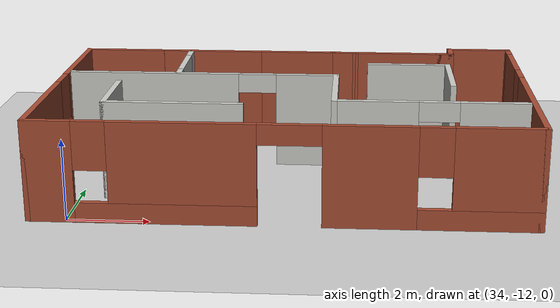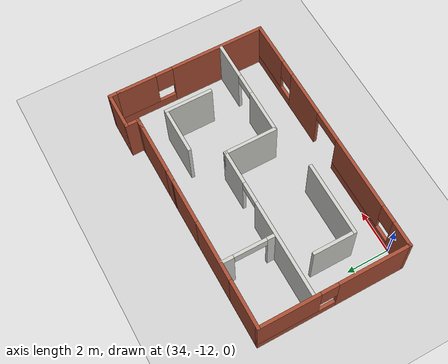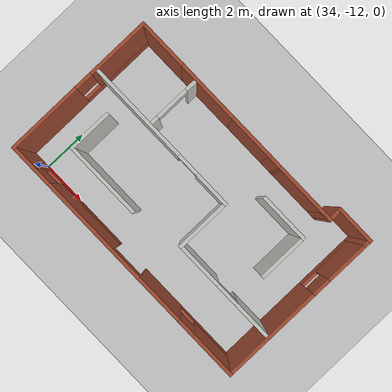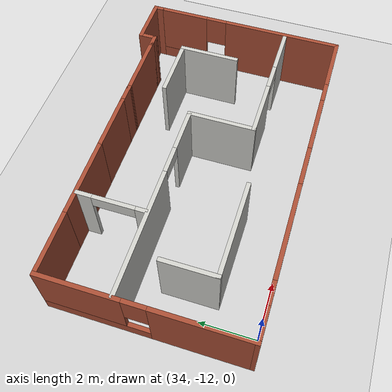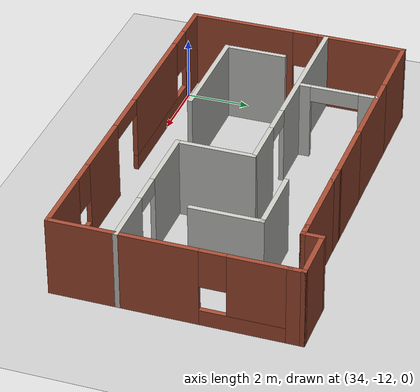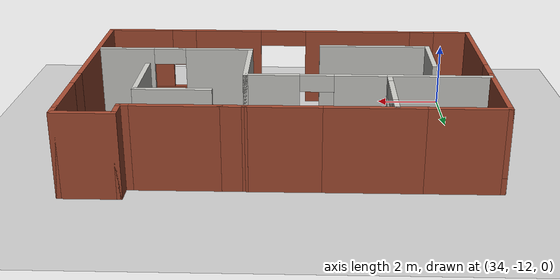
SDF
<sdf version="1.6">
 <world name="default">
  <model name="ground_plane">
   <static>1</static>
   <link name="link">
    <collision name="collision">
     <geometry><plane><normal>0 0 1</normal><size>100 100</size></plane></geometry>
     <surface><friction><ode><mu>100</mu><mu2>50</mu2></ode></friction></surface>
    </collision>
    <visual name="visual">
     <cast_shadows>0</cast_shadows>
     <geometry><plane><normal>0 0 1</normal><size>100 100</size></plane></geometry>
     <material>
      <script><uri>file://media/materials/scripts/gazebo.material</uri><name>Gazebo/Grey</name></script>
     </material>
    </visual>
   </link>
  </model>
  <model name="Multi_12_7home4">
   <pose>39.1247 -8.3603 0 0 -0 0</pose>
   <link name="Wall_20">
    <pose>-0.000494 -3.7 0 0 -0 0</pose>
    <visual name="Wall_20_Visual_0">
     <pose>-5.47297 0 1.25 0 -0 0</pose>
     <geometry><box><size>1.20406 0.15 2.5</size></box></geometry>
     <material>
      <script><uri>file://media/materials/scripts/gazebo.material</uri><name>Gazebo/Bricks</name></script>
      <ambient>0.996078 0.47451 0.0196078 1</ambient>
     </material>
     <meta><layer>0</layer></meta>
    </visual>
    <collision name="Wall_20_Collision_0">
     <geometry><box><size>1.20406 0.15 2.5</size></box></geometry>
     <pose>-5.47297 0 1.25 0 -0 0</pose>
    </collision>
    <visual name="Wall_20_Visual_1">
     <pose>2.02955 0 1.25 0 -0 0</pose>
     <geometry><box><size>2.20541 0.15 2.5</size></box></geometry>
     <material>
      <script><uri>file://media/materials/scripts/gazebo.material</uri><name>Gazebo/Bricks</name></script>
      <ambient>0.996078 0.47451 0.0196078 1</ambient>
     </material>
     <meta><layer>0</layer></meta>
    </visual>
    <collision name="Wall_20_Collision_1">
     <geometry><box><size>2.20541 0.15 2.5</size></box></geometry>
     <pose>2.02955 0 1.25 0 -0 0</pose>
    </collision>
    <visual name="Wall_20_Visual_2">
     <pose>-2.72205 0 0.25 0 -0 0</pose>
     <geometry><box><size>4.29778 0.15 0.5</size></box></geometry>
     <material>
      <script><uri>file://media/materials/scripts/gazebo.material</uri><name>Gazebo/Bricks</name></script>
      <ambient>0.996078 0.47451 0.0196078 1</ambient>
     </material>
     <meta><layer>0</layer></meta>
    </visual>
    <collision name="Wall_20_Collision_2">
     <geometry><box><size>4.29778 0.15 0.5</size></box></geometry>
     <pose>-2.72205 0 0.25 0 -0 0</pose>
    </collision>
    <visual name="Wall_20_Visual_3">
     <pose>4.60363 0 0.25 0 -0 0</pose>
     <geometry><box><size>2.94275 0.15 0.5</size></box></geometry>
     <material>
      <script><uri>file://media/materials/scripts/gazebo.material</uri><name>Gazebo/Bricks</name></script>
      <ambient>0.996078 0.47451 0.0196078 1</ambient>
     </material>
     <meta><layer>0</layer></meta>
    </visual>
    <collision name="Wall_20_Collision_3">
     <geometry><box><size>2.94275 0.15 0.5</size></box></geometry>
     <pose>4.60363 0 0.25 0 -0 0</pose>
    </collision>
    <visual name="Wall_20_Visual_4">
     <pose>-2.32205 0 1.5 0 -0 0</pose>
     <geometry><box><size>3.49778 0.15 2</size></box></geometry>
     <material>
      <script><uri>file://media/materials/scripts/gazebo.material</uri><name>Gazebo/Bricks</name></script>
      <ambient>0.996078 0.47451 0.0196078 1</ambient>
     </material>
     <meta><layer>0</layer></meta>
    </visual>
    <collision name="Wall_20_Collision_4">
     <geometry><box><size>3.49778 0.15 2</size></box></geometry>
     <pose>-2.32205 0 1.5 0 -0 0</pose>
    </collision>
    <visual name="Wall_20_Visual_5">
     <pose>-2.32205 0 1.5 0 -0 0</pose>
     <geometry><box><size>3.49778 0.15 2</size></box></geometry>
     <material>
      <script><uri>file://media/materials/scripts/gazebo.material</uri><name>Gazebo/Bricks</name></script>
      <ambient>0.996078 0.47451 0.0196078 1</ambient>
     </material>
     <meta><layer>0</layer></meta>
    </visual>
    <collision name="Wall_20_Collision_5">
     <geometry><box><size>3.49778 0.15 2</size></box></geometry>
     <pose>-2.32205 0 1.5 0 -0 0</pose>
    </collision>
    <visual name="Wall_20_Visual_6">
     <pose>5.00363 0 1.5 0 -0 0</pose>
     <geometry><box><size>2.14275 0.15 2</size></box></geometry>
     <material>
      <script><uri>file://media/materials/scripts/gazebo.material</uri><name>Gazebo/Bricks</name></script>
      <ambient>0.996078 0.47451 0.0196078 1</ambient>
     </material>
     <meta><layer>0</layer></meta>
    </visual>
    <collision name="Wall_20_Collision_6">
     <geometry><box><size>2.14275 0.15 2</size></box></geometry>
     <pose>5.00363 0 1.5 0 -0 0</pose>
    </collision>
    <visual name="Wall_20_Visual_7">
     <pose>-4.47094 0 1.9 0 -0 0</pose>
     <geometry><box><size>0.8 0.15 1.2</size></box></geometry>
     <material>
      <script><uri>file://media/materials/scripts/gazebo.material</uri><name>Gazebo/Bricks</name></script>
      <ambient>0.996078 0.47451 0.0196078 1</ambient>
     </material>
     <meta><layer>0</layer></meta>
    </visual>
    <collision name="Wall_20_Collision_7">
     <geometry><box><size>0.8 0.15 1.2</size></box></geometry>
     <pose>-4.47094 0 1.9 0 -0 0</pose>
    </collision>
    <visual name="Wall_20_Visual_8">
     <pose>3.53225 0 1.9 0 -0 0</pose>
     <geometry><box><size>0.8 0.15 1.2</size></box></geometry>
     <material>
      <script><uri>file://media/materials/scripts/gazebo.material</uri><name>Gazebo/Bricks</name></script>
      <ambient>0.996078 0.47451 0.0196078 1</ambient>
     </material>
     <meta><layer>0</layer></meta>
    </visual>
    <collision name="Wall_20_Collision_8">
     <geometry><box><size>0.8 0.15 1.2</size></box></geometry>
     <pose>3.53225 0 1.9 0 -0 0</pose>
    </collision>
    <visual name="Wall_20_Visual_9">
     <pose>0.17684 0 2.25 0 -0 0</pose>
     <geometry><box><size>1.5 0.15 0.5</size></box></geometry>
     <material>
      <script><uri>file://media/materials/scripts/gazebo.material</uri><name>Gazebo/Bricks</name></script>
      <ambient>0.996078 0.47451 0.0196078 1</ambient>
     </material>
     <meta><layer>0</layer></meta>
    </visual>
    <collision name="Wall_20_Collision_9">
     <geometry><box><size>1.5 0.15 0.5</size></box></geometry>
     <pose>0.17684 0 2.25 0 -0 0</pose>
    </collision>
    <visual name="Wall_20_Visual_10">
     <pose>0.17684 0 2.25 0 -0 0</pose>
     <geometry><box><size>1.5 0.15 0.5</size></box></geometry>
     <material>
      <script><uri>file://media/materials/scripts/gazebo.material</uri><name>Gazebo/Bricks</name></script>
      <ambient>0.996078 0.47451 0.0196078 1</ambient>
     </material>
     <meta><layer>0</layer></meta>
    </visual>
    <collision name="Wall_20_Collision_10">
     <geometry><box><size>1.5 0.15 0.5</size></box></geometry>
     <pose>0.17684 0 2.25 0 -0 0</pose>
    </collision>
   </link>
   <link name="Wall_22">
    <pose>5.99951 -0.2 0 0 -0 1.5708</pose>
    <visual name="Wall_22_Visual_0">
     <pose>-1.32733 0 1.25 0 -0 0</pose>
     <geometry><box><size>4.49534 0.15 2.5</size></box></geometry>
     <material>
      <script><uri>file://media/materials/scripts/gazebo.material</uri><name>Gazebo/Bricks</name></script>
      <ambient>0.996078 0.47451 0.0196078 1</ambient>
     </material>
     <meta><layer>0</layer></meta>
    </visual>
    <collision name="Wall_22_Collision_0">
     <geometry><box><size>4.49534 0.15 2.5</size></box></geometry>
     <pose>-1.32733 0 1.25 0 -0 0</pose>
    </collision>
    <visual name="Wall_22_Visual_1">
     <pose>2.24767 0 0.25 0 -0 0</pose>
     <geometry><box><size>2.65466 0.15 0.5</size></box></geometry>
     <material>
      <script><uri>file://media/materials/scripts/gazebo.material</uri><name>Gazebo/Bricks</name></script>
      <ambient>0.996078 0.47451 0.0196078 1</ambient>
     </material>
     <meta><layer>0</layer></meta>
    </visual>
    <collision name="Wall_22_Collision_1">
     <geometry><box><size>2.65466 0.15 0.5</size></box></geometry>
     <pose>2.24767 0 0.25 0 -0 0</pose>
    </collision>
    <visual name="Wall_22_Visual_2">
     <pose>2.64767 0 1.5 0 -0 0</pose>
     <geometry><box><size>1.85466 0.15 2</size></box></geometry>
     <material>
      <script><uri>file://media/materials/scripts/gazebo.material</uri><name>Gazebo/Bricks</name></script>
      <ambient>0.996078 0.47451 0.0196078 1</ambient>
     </material>
     <meta><layer>0</layer></meta>
    </visual>
    <collision name="Wall_22_Collision_2">
     <geometry><box><size>1.85466 0.15 2</size></box></geometry>
     <pose>2.64767 0 1.5 0 -0 0</pose>
    </collision>
    <visual name="Wall_22_Visual_3">
     <pose>1.32034 0 1.9 0 -0 0</pose>
     <geometry><box><size>0.8 0.15 1.2</size></box></geometry>
     <material>
      <script><uri>file://media/materials/scripts/gazebo.material</uri><name>Gazebo/Bricks</name></script>
      <ambient>0.996078 0.47451 0.0196078 1</ambient>
     </material>
     <meta><layer>0</layer></meta>
    </visual>
    <collision name="Wall_22_Collision_3">
     <geometry><box><size>0.8 0.15 1.2</size></box></geometry>
     <pose>1.32034 0 1.9 0 -0 0</pose>
    </collision>
   </link>
   <link name="Wall_24">
    <pose>-6.00049 -0.275 0 0 -0 1.5708</pose>
    <visual name="Wall_24_Visual_0">
     <pose>-1.81903 0 1.25 0 -0 0</pose>
     <geometry><box><size>3.36194 0.15 2.5</size></box></geometry>
     <material>
      <script><uri>file://media/materials/scripts/gazebo.material</uri><name>Gazebo/Bricks</name></script>
      <ambient>0.996078 0.47451 0.0196078 1</ambient>
     </material>
     <meta><layer>0</layer></meta>
    </visual>
    <collision name="Wall_24_Collision_0">
     <geometry><box><size>3.36194 0.15 2.5</size></box></geometry>
     <pose>-1.81903 0 1.25 0 -0 0</pose>
    </collision>
    <visual name="Wall_24_Visual_1">
     <pose>1.68097 0 0.25 0 -0 0</pose>
     <geometry><box><size>3.63806 0.15 0.5</size></box></geometry>
     <material>
      <script><uri>file://media/materials/scripts/gazebo.material</uri><name>Gazebo/Bricks</name></script>
      <ambient>0.996078 0.47451 0.0196078 1</ambient>
     </material>
     <meta><layer>0</layer></meta>
    </visual>
    <collision name="Wall_24_Collision_1">
     <geometry><box><size>3.63806 0.15 0.5</size></box></geometry>
     <pose>1.68097 0 0.25 0 -0 0</pose>
    </collision>
    <visual name="Wall_24_Visual_2">
     <pose>2.08097 0 1.5 0 -0 0</pose>
     <geometry><box><size>2.83806 0.15 2</size></box></geometry>
     <material>
      <script><uri>file://media/materials/scripts/gazebo.material</uri><name>Gazebo/Bricks</name></script>
      <ambient>0.996078 0.47451 0.0196078 1</ambient>
     </material>
     <meta><layer>0</layer></meta>
    </visual>
    <collision name="Wall_24_Collision_2">
     <geometry><box><size>2.83806 0.15 2</size></box></geometry>
     <pose>2.08097 0 1.5 0 -0 0</pose>
    </collision>
    <visual name="Wall_24_Visual_3">
     <pose>0.261937 0 1.9 0 -0 0</pose>
     <geometry><box><size>0.8 0.15 1.2</size></box></geometry>
     <material>
      <script><uri>file://media/materials/scripts/gazebo.material</uri><name>Gazebo/Bricks</name></script>
      <ambient>0.996078 0.47451 0.0196078 1</ambient>
     </material>
     <meta><layer>0</layer></meta>
    </visual>
    <collision name="Wall_24_Collision_3">
     <geometry><box><size>0.8 0.15 1.2</size></box></geometry>
     <pose>0.261937 0 1.9 0 -0 0</pose>
    </collision>
   </link>
   <link name="Wall_26">
    <collision name="Wall_26_Collision">
     <geometry><box><size>2.25 0.15 2.5</size></box></geometry>
     <pose>0 0 1.25 0 -0 0</pose>
    </collision>
    <visual name="Wall_26_Visual">
     <pose>0 0 1.25 0 -0 0</pose>
     <geometry><box><size>2.25 0.15 2.5</size></box></geometry>
     <material>
      <script><uri>file://media/materials/scripts/gazebo.material</uri><name>Gazebo/Bricks</name></script>
      <ambient>0.996078 0.47451 0.0196078 1</ambient>
     </material>
     <meta><layer>0</layer></meta>
    </visual>
    <pose>-4.95049 3.15 0 0 -0 0</pose>
   </link>
   <link name="Wall_28">
    <collision name="Wall_28_Collision">
     <geometry><box><size>2.808 0.15 2.5</size></box></geometry>
     <pose>0 0 1.25 0 -0 0</pose>
    </collision>
    <visual name="Wall_28_Visual">
     <pose>0 0 1.25 0 -0 0</pose>
     <geometry><box><size>2.808 0.15 2.5</size></box></geometry>
     <material>
      <script><uri>file://media/materials/scripts/gazebo.material</uri><name>Gazebo/Bricks</name></script>
      <ambient>0.996078 0.47451 0.0196078 1</ambient>
     </material>
     <meta><layer>0</layer></meta>
    </visual>
    <pose>-2.42949 3.151 0 0 -0 0</pose>
   </link>
   <link name="Wall_32">
    <collision name="Wall_32_Collision">
     <geometry><box><size>2.15 0.15 2.5</size></box></geometry>
     <pose>0 0 1.25 0 -0 0</pose>
    </collision>
    <visual name="Wall_32_Visual">
     <pose>0 0 1.25 0 -0 0</pose>
     <geometry><box><size>2.15 0.15 2.5</size></box></geometry>
     <material>
      <script><uri>file://media/materials/scripts/gazebo.material</uri><name>Gazebo/Bricks</name></script>
      <ambient>0.996078 0.47451 0.0196078 1</ambient>
     </material>
     <meta><layer>0</layer></meta>
    </visual>
    <pose>-0.000494 3.154 0 0 -0 0</pose>
   </link>
   <link name="Wall_33">
    <collision name="Wall_33_Collision">
     <geometry><box><size>0.800012 0.15 2.5</size></box></geometry>
     <pose>0 0 1.25 0 -0 0</pose>
    </collision>
    <visual name="Wall_33_Visual">
     <pose>0 0 1.25 0 -0 0</pose>
     <geometry><box><size>0.800012 0.15 2.5</size></box></geometry>
     <material>
      <script><uri>file://media/materials/scripts/gazebo.material</uri><name>Gazebo/Bricks</name></script>
      <ambient>0.996078 0.47451 0.0196078 1</ambient>
     </material>
     <meta><layer>0</layer></meta>
    </visual>
    <pose>1.32451 3.152 0 0 -0 -0.006154</pose>
   </link>
   <link name="Wall_34">
    <collision name="Wall_34_Collision">
     <geometry><box><size>2.5 0.15 2.5</size></box></geometry>
     <pose>0 0 1.25 0 -0 0</pose>
    </collision>
    <visual name="Wall_34_Visual">
     <pose>0 0 1.25 0 -0 0</pose>
     <geometry><box><size>2.5 0.15 2.5</size></box></geometry>
     <material>
      <script><uri>file://media/materials/scripts/gazebo.material</uri><name>Gazebo/Bricks</name></script>
      <ambient>0.996078 0.47451 0.0196078 1</ambient>
     </material>
     <meta><layer>0</layer></meta>
    </visual>
    <pose>2.82451 3.15 0 0 -0 0</pose>
   </link>
   <link name="Wall_35">
    <collision name="Wall_35_Collision">
     <geometry><box><size>0.5 0.15 2.5</size></box></geometry>
     <pose>0 0 1.25 0 -0 0</pose>
    </collision>
    <visual name="Wall_35_Visual">
     <pose>0 0 1.25 0 -0 0</pose>
     <geometry><box><size>0.5 0.15 2.5</size></box></geometry>
     <material>
      <script><uri>file://media/materials/scripts/gazebo.material</uri><name>Gazebo/Bricks</name></script>
      <ambient>1 1 1 1</ambient>
     </material>
     <meta><layer>0</layer></meta>
    </visual>
    <pose>4.17451 3.15 0 0 -0 0</pose>
   </link>
   <link name="Wall_36">
    <collision name="Wall_36_Collision">
     <geometry><box><size>0.7 0.15 2.5</size></box></geometry>
     <pose>0 0 1.25 0 -0 0</pose>
    </collision>
    <visual name="Wall_36_Visual">
     <pose>0 0 1.25 0 -0 0</pose>
     <geometry><box><size>0.7 0.15 2.5</size></box></geometry>
     <material>
      <script><uri>file://media/materials/scripts/gazebo.material</uri><name>Gazebo/Bricks</name></script>
      <ambient>0.996078 0.47451 0.0196078 1</ambient>
     </material>
     <meta><layer>0</layer></meta>
    </visual>
    <pose>4.34951 3.425 0 0 -0 1.5708</pose>
   </link>
   <link name="Wall_37">
    <collision name="Wall_37_Collision">
     <geometry><box><size>1.8 0.15 2.5</size></box></geometry>
     <pose>0 0 1.25 0 -0 0</pose>
    </collision>
    <visual name="Wall_37_Visual">
     <pose>0 0 1.25 0 -0 0</pose>
     <geometry><box><size>1.8 0.15 2.5</size></box></geometry>
     <material>
      <script><uri>file://media/materials/scripts/gazebo.material</uri><name>Gazebo/Bricks</name></script>
      <ambient>0.996078 0.47451 0.0196078 1</ambient>
     </material>
     <meta><layer>0</layer></meta>
    </visual>
    <pose>5.17451 3.7 0 0 -0 0</pose>
   </link>
   <link name="Wall_38">
    <collision name="Wall_38_Collision">
     <geometry><box><size>0.55 0.15 2.5</size></box></geometry>
     <pose>0 0 1.25 0 -0 0</pose>
    </collision>
    <visual name="Wall_38_Visual">
     <pose>0 0 1.25 0 -0 0</pose>
     <geometry><box><size>0.55 0.15 2.5</size></box></geometry>
     <material>
      <script><uri>file://media/materials/scripts/gazebo.material</uri><name>Gazebo/Bricks</name></script>
      <ambient>0.996078 0.47451 0.0196078 1</ambient>
     </material>
     <meta><layer>0</layer></meta>
    </visual>
    <pose>5.99951 3.5 0 0 -0 -1.5708</pose>
   </link>
   <link name="Wall_48">
    <pose>-2.39951 0.665247 0 0 -0 0</pose>
    <visual name="Wall_48_Visual_0">
     <pose>-1.32877 0 1.25 0 -0 0</pose>
     <geometry><box><size>4.59246 0.15 2.5</size></box></geometry>
     <material>
      <script><uri>file://media/materials/scripts/gazebo.material</uri><name>Gazebo/CeilingTiled</name></script>
      <ambient>1 1 1 1</ambient>
     </material>
     <meta><layer>0</layer></meta>
    </visual>
    <collision name="Wall_48_Collision_0">
     <geometry><box><size>4.59246 0.15 2.5</size></box></geometry>
     <pose>-1.32877 0 1.25 0 -0 0</pose>
    </collision>
    <visual name="Wall_48_Visual_1">
     <pose>2.79623 0 1.25 0 -0 0</pose>
     <geometry><box><size>1.65754 0.15 2.5</size></box></geometry>
     <material>
      <script><uri>file://media/materials/scripts/gazebo.material</uri><name>Gazebo/CeilingTiled</name></script>
      <ambient>1 1 1 1</ambient>
     </material>
     <meta><layer>0</layer></meta>
    </visual>
    <collision name="Wall_48_Collision_1">
     <geometry><box><size>1.65754 0.15 2.5</size></box></geometry>
     <pose>2.79623 0 1.25 0 -0 0</pose>
    </collision>
    <visual name="Wall_48_Visual_2">
     <pose>1.46746 0 2.25 0 -0 0</pose>
     <geometry><box><size>1 0.15 0.5</size></box></geometry>
     <material>
      <script><uri>file://media/materials/scripts/gazebo.material</uri><name>Gazebo/CeilingTiled</name></script>
      <ambient>1 1 1 1</ambient>
     </material>
     <meta><layer>0</layer></meta>
    </visual>
    <collision name="Wall_48_Collision_2">
     <geometry><box><size>1 0.15 0.5</size></box></geometry>
     <pose>1.46746 0 2.25 0 -0 0</pose>
    </collision>
   </link>
   <link name="Wall_49">
    <collision name="Wall_49_Collision">
     <geometry><box><size>2.5 0.15 2.5</size></box></geometry>
     <pose>0 0 1.25 0 -0 0</pose>
    </collision>
    <visual name="Wall_49_Visual">
     <pose>0 0 1.25 0 -0 0</pose>
     <geometry><box><size>2.5 0.15 2.5</size></box></geometry>
     <material>
      <script><uri>file://media/materials/scripts/gazebo.material</uri><name>Gazebo/CeilingTiled</name></script>
      <ambient>1 1 1 1</ambient>
     </material>
     <meta><layer>0</layer></meta>
    </visual>
    <pose>1.15049 -0.509753 0 0 -0 -1.5708</pose>
   </link>
   <link name="Wall_50">
    <pose>3.57549 -1.68475 0 0 -0 0</pose>
    <visual name="Wall_50_Visual_0">
     <pose>-1.43337 0 1.25 0 -0 0</pose>
     <geometry><box><size>2.13325 0.15 2.5</size></box></geometry>
     <material>
      <script><uri>file://media/materials/scripts/gazebo.material</uri><name>Gazebo/CeilingTiled</name></script>
      <ambient>1 1 1 1</ambient>
     </material>
     <meta><layer>0</layer></meta>
    </visual>
    <collision name="Wall_50_Collision_0">
     <geometry><box><size>2.13325 0.15 2.5</size></box></geometry>
     <pose>-1.43337 0 1.25 0 -0 0</pose>
    </collision>
    <visual name="Wall_50_Visual_1">
     <pose>1.56663 0 1.25 0 -0 0</pose>
     <geometry><box><size>1.86675 0.15 2.5</size></box></geometry>
     <material>
      <script><uri>file://media/materials/scripts/gazebo.material</uri><name>Gazebo/CeilingTiled</name></script>
      <ambient>1 1 1 1</ambient>
     </material>
     <meta><layer>0</layer></meta>
    </visual>
    <collision name="Wall_50_Collision_1">
     <geometry><box><size>1.86675 0.15 2.5</size></box></geometry>
     <pose>1.56663 0 1.25 0 -0 0</pose>
    </collision>
    <visual name="Wall_50_Visual_2">
     <pose>0.133254 0 2.25 0 -0 0</pose>
     <geometry><box><size>1 0.15 0.5</size></box></geometry>
     <material>
      <script><uri>file://media/materials/scripts/gazebo.material</uri><name>Gazebo/CeilingTiled</name></script>
      <ambient>1 1 1 1</ambient>
     </material>
     <meta><layer>0</layer></meta>
    </visual>
    <collision name="Wall_50_Collision_2">
     <geometry><box><size>1 0.15 0.5</size></box></geometry>
     <pose>0.133254 0 2.25 0 -0 0</pose>
    </collision>
   </link>
   <link name="Wall_52">
    <collision name="Wall_52_Collision">
     <geometry><box><size>2 0.15 2.5</size></box></geometry>
     <pose>0 0 1.25 0 -0 0</pose>
    </collision>
    <visual name="Wall_52_Visual">
     <pose>0 0 1.25 0 -0 0</pose>
     <geometry><box><size>2 0.15 2.5</size></box></geometry>
     <material>
      <script><uri>file://media/materials/scripts/gazebo.material</uri><name>Gazebo/CeilingTiled</name></script>
      <ambient>1 1 1 1</ambient>
     </material>
     <meta><layer>0</layer></meta>
    </visual>
    <pose>-4.45905 -1.17455 0 0 -0 -1.5708</pose>
   </link>
   <link name="Wall_53">
    <collision name="Wall_53_Collision">
     <geometry><box><size>3.5 0.15 2.5</size></box></geometry>
     <pose>0 0 1.25 0 -0 0</pose>
    </collision>
    <visual name="Wall_53_Visual">
     <pose>0 0 1.25 0 -0 0</pose>
     <geometry><box><size>3.5 0.15 2.5</size></box></geometry>
     <material>
      <script><uri>file://media/materials/scripts/gazebo.material</uri><name>Gazebo/CeilingTiled</name></script>
      <ambient>1 1 1 1</ambient>
     </material>
     <meta><layer>0</layer></meta>
    </visual>
    <pose>-2.78405 -2.09955 0 0 -0 0</pose>
   </link>
   <link name="Wall_55">
    <pose>-3.03587 1.91682 0 0 -0 -1.5708</pose>
    <visual name="Wall_55_Visual_0">
     <pose>-0.958422 0 1.25 0 -0 0</pose>
     <geometry><box><size>0.583157 0.15 2.5</size></box></geometry>
     <material>
      <script><uri>file://media/materials/scripts/gazebo.material</uri><name>Gazebo/CeilingTiled</name></script>
      <ambient>1 1 1 1</ambient>
     </material>
     <meta><layer>0</layer></meta>
    </visual>
    <collision name="Wall_55_Collision_0">
     <geometry><box><size>0.583157 0.15 2.5</size></box></geometry>
     <pose>-0.958422 0 1.25 0 -0 0</pose>
    </collision>
    <visual name="Wall_55_Visual_1">
     <pose>1.04158 0 1.25 0 -0 0</pose>
     <geometry><box><size>0.416843 0.15 2.5</size></box></geometry>
     <material>
      <script><uri>file://media/materials/scripts/gazebo.material</uri><name>Gazebo/CeilingTiled</name></script>
      <ambient>1 1 1 1</ambient>
     </material>
     <meta><layer>0</layer></meta>
    </visual>
    <collision name="Wall_55_Collision_1">
     <geometry><box><size>0.416843 0.15 2.5</size></box></geometry>
     <pose>1.04158 0 1.25 0 -0 0</pose>
    </collision>
    <visual name="Wall_55_Visual_2">
     <pose>0.083157 0 2.25 0 -0 0</pose>
     <geometry><box><size>1.5 0.15 0.5</size></box></geometry>
     <material>
      <script><uri>file://media/materials/scripts/gazebo.material</uri><name>Gazebo/CeilingTiled</name></script>
      <ambient>1 1 1 1</ambient>
     </material>
     <meta><layer>0</layer></meta>
    </visual>
    <collision name="Wall_55_Collision_2">
     <geometry><box><size>1.5 0.15 0.5</size></box></geometry>
     <pose>0.083157 0 2.25 0 -0 0</pose>
    </collision>
   </link>
   <link name="Wall_57">
    <collision name="Wall_57_Collision">
     <geometry><box><size>2.25 0.15 2.5</size></box></geometry>
     <pose>0 0 1.25 0 -0 0</pose>
    </collision>
    <visual name="Wall_57_Visual">
     <pose>0 0 1.25 0 -0 0</pose>
     <geometry><box><size>2.25 0.15 2.5</size></box></geometry>
     <material>
      <script><uri>file://media/materials/scripts/gazebo.material</uri><name>Gazebo/CeilingTiled</name></script>
      <ambient>1 1 1 1</ambient>
     </material>
     <meta><layer>0</layer></meta>
    </visual>
    <pose>3.10869 1.91616 0 0 -0 0</pose>
   </link>
   <link name="Wall_58">
    <collision name="Wall_58_Collision">
     <geometry><box><size>2.25 0.15 2.5</size></box></geometry>
     <pose>0 0 1.25 0 -0 0</pose>
    </collision>
    <visual name="Wall_58_Visual">
     <pose>0 0 1.25 0 -0 0</pose>
     <geometry><box><size>2.25 0.15 2.5</size></box></geometry>
     <material>
      <script><uri>file://media/materials/scripts/gazebo.material</uri><name>Gazebo/CeilingTiled</name></script>
      <ambient>1 1 1 1</ambient>
     </material>
     <meta><layer>0</layer></meta>
    </visual>
    <pose>4.15869 0.866155 0 0 -0 -1.5708</pose>
   </link>
   <static>1</static>
  </model>
 </world>
</sdf>
